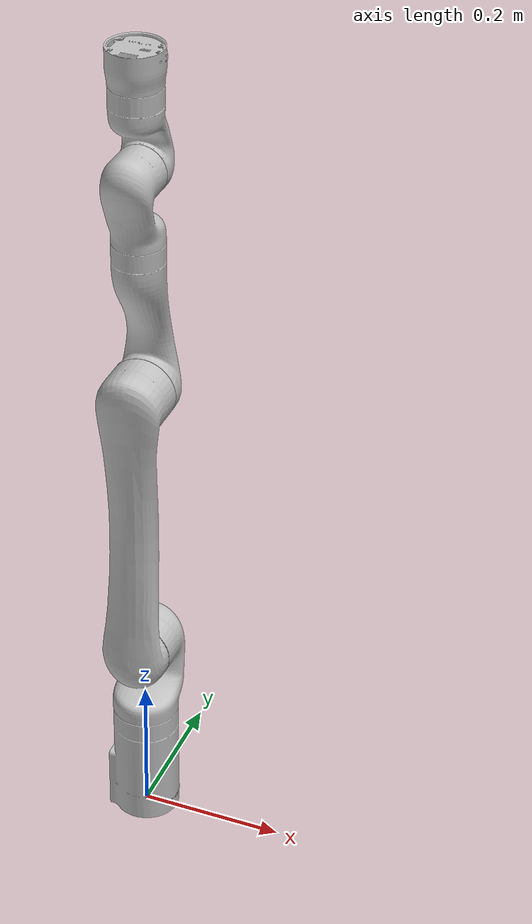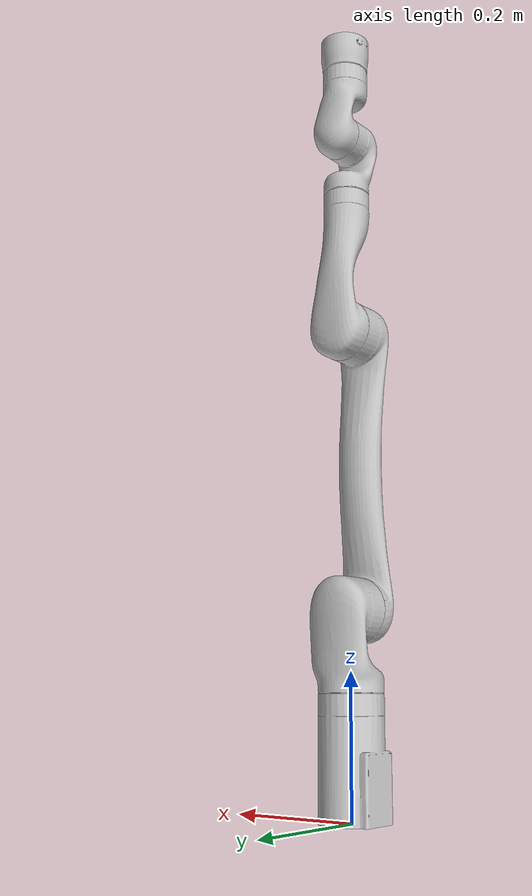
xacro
<?xml version="1.0"?>

<robot name="gen3kinova" xmlns:xacro="http://ros.org/wiki/xacro">

  <!-- Propagate last link name information because it is the gripper's parent link -->
  <xacro:property name="last_arm_link" value="end_effector_link"/>

    <link name="base_arm">
      <inertial>
        <origin xyz="-0.000648 -0.000166 0.084487" rpy="0 0 0" />
        <mass value="1.697" />
        <inertia ixx="0.004622" ixy="9E-06" ixz="6E-05" iyy="0.004495" iyz="9E-06" izz="0.002079" />
      </inertial>
      <visual>
        <origin xyz="0 0 0" rpy="0 0 0" />
        <geometry>
          <mesh filename="package://gen3kinova_description/meshes/base_link.dae" />
        </geometry>
        <material name="">
          <color rgba="0.75294 0.75294 0.75294 1" />
        </material>
      </visual>
      <collision>
        <origin xyz="0 0 0" rpy="0 0 0" />
        <geometry>
          <mesh filename="package://gen3kinova_description/meshes/base_link.dae" />
        </geometry>
      </collision>
    </link>
    <link name="shoulder_link">
      <inertial>
        <origin xyz="-2.3E-05 -0.010364 -0.07336" rpy="0 0 0" />
        <mass value="1.377" />
        <inertia ixx="0.00457" ixy="1E-06" ixz="2E-06" iyy="0.004831" iyz="0.000448" izz="0.001409" />
      </inertial>
      <visual>
        <origin xyz="0 0 0" rpy="0 0 0" />
        <geometry>
          <mesh filename="package://gen3kinova_description/meshes/shoulder_link.dae" />
        </geometry>
        <material name="">
          <color rgba="0.75294 0.75294 0.75294 1" />
        </material>
      </visual>
      <collision>
        <origin xyz="0 0 0" rpy="0 0 0" />
        <geometry>
          <mesh filename="package://gen3kinova_description/meshes/shoulder_link.dae" />
        </geometry>
      </collision>
    </link>
    <joint name="z_joint_1" type="continuous">
      <origin xyz="0 0 0.15643" rpy="-3.1416 0.0 0.0" />
      <parent link="base_arm" />
      <child link="shoulder_link" />
      <axis xyz="0 0 1" />
      <limit effort="39" velocity="1.3963" />
    </joint>
    <link name="bicep_link">
      <inertial>
        <origin xyz="3.5E-05 -0.208207 -0.01889" rpy="0 0 0" />
        <mass value="1.262" />
        <inertia ixx="0.046752" ixy="-9E-06" ixz="0" iyy="0.00085" iyz="-9.8E-05" izz="0.047188" />
      </inertial>
      <visual>
        <origin xyz="0 0 0" rpy="0 0 0" />
        <geometry>
          <mesh filename="package://gen3kinova_description/meshes/bicep_link.dae" />
        </geometry>
        <material name="">
          <color rgba="0.75294 0.75294 0.75294 1" />
        </material>
      </visual>
      <collision>
        <origin xyz="0 0 0" rpy="0 0 0" />
        <geometry>
          <mesh filename="package://gen3kinova_description/meshes/bicep_link.dae" />
        </geometry>
      </collision>
    </link>
    <joint name="z_joint_2" type="revolute">
      <origin xyz="0 0.005375 -0.12838" rpy="1.5708 0.0 0.0" />
      <parent link="shoulder_link" />
      <child link="bicep_link" />
      <axis xyz="0 0 1" />
      <limit lower="-2.41" upper="2.41" effort="39" velocity="1.3963" />
    </joint>
    <link name="forearm_link">
      <inertial>
        <origin xyz="1.8E-05 0.076168 -0.01397" rpy="0 0 0" />
        <mass value="0.93" />
        <inertia ixx="0.008292" ixy="-1E-06" ixz="0" iyy="0.000628" iyz="0.000432" izz="0.008464" />
      </inertial>
      <visual>
        <origin xyz="0 0 0" rpy="0 0 0" />
        <geometry>
          <mesh filename="package://gen3kinova_description/meshes/forearm_link.dae" />
        </geometry>
        <material name="">
          <color rgba="0.75294 0.75294 0.75294 1" />
        </material>
      </visual>
      <collision>
        <origin xyz="0 0 0" rpy="0 0 0" />
        <geometry>
          <mesh filename="package://gen3kinova_description/meshes/forearm_link.dae" />
        </geometry>
      </collision>
    </link>
    <joint name="z_joint_3" type="revolute">
      <origin xyz="0 -0.41 0" rpy="3.1416 0 0" />
      <parent link="bicep_link" />
      <child link="forearm_link" />
      <axis xyz="0 0 1" />
      <limit lower="-2.66" upper="2.66" effort="39" velocity="1.3963" />
    </joint>
    <link name="spherical_wrist_1_link">
      <inertial>
        <origin xyz="-1E-06 0.008486 -0.062937" rpy="0 0 0" />
        <mass value="0.6781" />
        <inertia ixx="0.001645" ixy="0" ixz="0" iyy="0.001666" iyz="-0.000234" izz="0.000389" />
      </inertial>
      <visual>
        <origin xyz="0 0 0" rpy="0 0 0" />
        <geometry>
          <mesh filename="package://gen3kinova_description/meshes/spherical_wrist_1_link.dae" />
        </geometry>
        <material name="">
          <color rgba="0.75294 0.75294 0.75294 1" />
        </material>
      </visual>
      <collision>
        <origin xyz="0 0 0" rpy="0 0 0" />
        <geometry>
          <mesh filename="package://gen3kinova_description/meshes/spherical_wrist_1_link.dae" />
        </geometry>
      </collision>
    </link>
    <joint name="z_joint_4" type="revolute">
      <origin xyz="0 0.20843 -0.006375" rpy="1.5708 0.0 0.0" />
      <parent link="forearm_link" />
      <child link="spherical_wrist_1_link" />
      <axis xyz="0 0 1" />
      <limit lower="-2.41" upper="2.41" effort="9" velocity="1.2218" />
    </joint>
    <link name="spherical_wrist_2_link">
      <inertial>
        <origin xyz="-1E-06 0.046429 -0.008704" rpy="0 0 0" />
        <mass value="0.678" />
        <inertia ixx="0.001685" ixy="0" ixz="0" iyy="0.0004" iyz="0.000255" izz="0.001696" />
      </inertial>
      <visual>
        <origin xyz="0 0 0" rpy="0 0 0" />
        <geometry>
          <mesh filename="package://gen3kinova_description/meshes/spherical_wrist_2_link.dae" />
        </geometry>
        <material name="">
          <color rgba="0.75294 0.75294 0.75294 1" />
        </material>
      </visual>
      <collision>
        <origin xyz="0 0 0" rpy="0 0 0" />
        <geometry>
          <mesh filename="package://gen3kinova_description/meshes/spherical_wrist_2_link.dae" />
        </geometry>
      </collision>
    </link>
    <joint name="z_joint_5" type="revolute">
      <origin xyz="0 -0.00017505 -0.10593" rpy="-1.5708 0.0 0.0" />
      <parent link="spherical_wrist_1_link" />
      <child link="spherical_wrist_2_link" />
      <axis xyz="0 0 1" />
      <limit lower="-2.23" upper="2.23" effort="9" velocity="1.2218" />
    </joint>

    <link name="bracelet_link">
      <inertial>
        <origin xyz="-9.3E-05 0.000132 -0.022905" rpy="0 0 0" />
        <mass value="0.364" />
        <inertia ixx="0.000214" ixy="0" ixz="1E-06" iyy="0.000223" iyz="-2E-06" izz="0.00024" />
      </inertial>
      <visual>
        <origin xyz="0 0 0" rpy="0 0 0" />
        <geometry>
          <mesh filename="package://gen3kinova_description/meshes/bracelet_no_vision_link.dae" />
        </geometry>
        <material name="">
          <color rgba="0.75294 0.75294 0.75294 1" />
        </material>
      </visual>
      <collision>
        <origin xyz="0 0 0" rpy="0 0 0" />
        <geometry>
          <mesh filename="package://gen3kinova_description/meshes/bracelet_no_vision_link.dae" />
        </geometry>
      </collision>
    </link>

    <joint name="z_joint_6" type="revolute">
      <origin xyz="0 0.10593 -0.00017505" rpy="1.5708 0.0 0.0" />
      <parent link="spherical_wrist_2_link" />
      <child link="bracelet_link" />
      <axis xyz="0 0 1" />
      <limit lower="-2.41" upper="2.41"  effort="9" velocity="1.2218" />
    </joint>

   <link name="end_effector_link" />
    <joint
      name="end_effector"
      type="fixed">
      <origin xyz="0 0 -0.0615250000000001" rpy="3.14159265358979 1.09937075168372E-32 3.14159265358979" />
      <parent
        link="bracelet_link" />
      <child
        link="end_effector_link" />
      <axis
        xyz="0 0 0" />
    </joint>

</robot>
